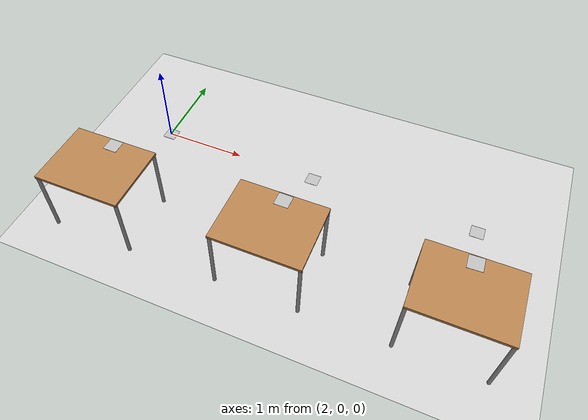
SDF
<sdf version="1.6">
 <world name="default">
  <light name="sun" type="directional">
   <pose>0 0 10 0 -0 0</pose>
   <diffuse>0.8 0.8 0.8 1</diffuse>
   <specular>0.2 0.2 0.2 1</specular>
   <attenuation>
    <range>1000</range>
    <constant>0.9</constant>
    <linear>0.01</linear>
    <quadratic>0.001</quadratic>
   </attenuation>
   <direction>-0.5 0.1 -0.9</direction>
  </light>
  <model name="ground_plane">
   <static>1</static>
   <link name="link">
    <collision name="collision">
     <geometry><plane><normal>0 0 1</normal><size>100 100</size></plane></geometry>
     <surface>
      <contact><collide_bitmask>65535</collide_bitmask></contact>
      <friction><ode><mu>100</mu><mu2>50</mu2></ode></friction>
     </surface>
    </collision>
    <visual name="visual">
     <cast_shadows>0</cast_shadows>
     <geometry><plane><normal>0 0 1</normal><size>100 100</size></plane></geometry>
     <material>
      <script><uri>file://media/materials/scripts/gazebo.material</uri><name>Gazebo/Grey</name></script>
     </material>
    </visual>
   </link>
  </model>
  <gravity>0 0 -9.8</gravity>
  <magnetic_field>6e-06 2.3e-05 -4.2e-05</magnetic_field>
  <atmosphere type="adiabatic"/>
  <physics name="default_physics" default="0" type="ode">
   <max_step_size>0.001</max_step_size>
   <real_time_factor>1</real_time_factor>
   <real_time_update_rate>1000</real_time_update_rate>
  </physics>
  <scene><ambient>0.4 0.4 0.4 1</ambient><background>0.7 0.7 0.7 1</background><shadows>1</shadows></scene>
  <spherical_coordinates>
   <surface_model>EARTH_WGS84</surface_model>
   <latitude_deg>0</latitude_deg>
   <longitude_deg>0</longitude_deg>
   <elevation>0</elevation>
   <heading_deg>0</heading_deg>
  </spherical_coordinates>
  <model name="aruco_marker_original_582">
   <static>0</static>
   <link name="marker">
    <inertial>
     <mass>0.1</mass>
     <inertia><ixx>0</ixx><ixy>0</ixy><ixz>0</ixz><iyy>0</iyy><iyz>0</iyz><izz>0</izz></inertia>
    </inertial>
    <visual name="visual">
     <pose>0 0 0 0 -0 1.57</pose>
     <geometry><box><size>0.16 0.16 0.001</size></box></geometry>
     <material>
      <script>
       <uri>model://aruco_marker_original_582/material/scripts</uri>
       <uri>model://aruco_marker_original_582/material/textures</uri>
       <name>Aruco/aruco_marker_original_582</name>
      </script>
     </material>
    </visual>
    <collision name="collision"><geometry><box><size>0.16 0.16 0.001</size></box></geometry></collision>
    <self_collide>1</self_collide>
   </link>
   <pose>2.00752 0.003675 0.0005 2e-06 -0 -0.016304</pose>
  </model>
  <model name="table">
   <static>1</static>
   <link name="link">
    <collision name="surface">
     <pose>0 0 0.8 0 -0 0</pose>
     <geometry><box><size>1 0.8 0.03</size></box></geometry>
    </collision>
    <visual name="visual1">
     <pose>0 0 0.8 0 -0 0</pose>
     <geometry><box><size>1 0.8 0.03</size></box></geometry>
     <material>
      <script><uri>file://media/materials/scripts/gazebo.material</uri><name>Gazebo/Wood</name></script>
     </material>
    </visual>
    <collision name="front_left_leg">
     <pose>0.48 0.38 0.4 0 -0 0</pose>
     <geometry><cylinder><radius>0.02</radius><length>0.8</length></cylinder></geometry>
    </collision>
    <visual name="front_left_leg">
     <pose>0.48 0.38 0.4 0 -0 0</pose>
     <geometry><cylinder><radius>0.02</radius><length>0.8</length></cylinder></geometry>
     <material>
      <script><uri>file://media/materials/scripts/gazebo.material</uri><name>Gazebo/Grey</name></script>
     </material>
    </visual>
    <collision name="front_right_leg">
     <pose>0.48 -0.38 0.4 0 -0 0</pose>
     <geometry><cylinder><radius>0.02</radius><length>0.8</length></cylinder></geometry>
    </collision>
    <visual name="front_right_leg">
     <pose>0.48 -0.38 0.4 0 -0 0</pose>
     <geometry><cylinder><radius>0.02</radius><length>0.8</length></cylinder></geometry>
     <material>
      <script><uri>file://media/materials/scripts/gazebo.material</uri><name>Gazebo/Grey</name></script>
     </material>
    </visual>
    <collision name="back_right_leg">
     <pose>-0.48 -0.38 0.4 0 -0 0</pose>
     <geometry><cylinder><radius>0.02</radius><length>0.8</length></cylinder></geometry>
    </collision>
    <visual name="back_right_leg">
     <pose>-0.48 -0.38 0.4 0 -0 0</pose>
     <geometry><cylinder><radius>0.02</radius><length>0.8</length></cylinder></geometry>
     <material>
      <script><uri>file://media/materials/scripts/gazebo.material</uri><name>Gazebo/Grey</name></script>
     </material>
    </visual>
    <collision name="back_left_leg">
     <pose>-0.48 0.38 0.4 0 -0 0</pose>
     <geometry><cylinder><radius>0.02</radius><length>0.8</length></cylinder></geometry>
    </collision>
    <visual name="back_left_leg">
     <pose>-0.48 0.38 0.4 0 -0 0</pose>
     <geometry><cylinder><radius>0.02</radius><length>0.8</length></cylinder></geometry>
     <material>
      <script><uri>file://media/materials/scripts/gazebo.material</uri><name>Gazebo/Grey</name></script>
     </material>
    </visual>
    <velocity_decay><linear>0</linear><angular>0</angular></velocity_decay>
   </link>
   <pose>2.00371 -1.41381 0 0 -0 0</pose>
  </model>
  <model name="table_0">
   <static>1</static>
   <link name="link">
    <collision name="surface">
     <pose>0 0 0.8 0 -0 0</pose>
     <geometry><box><size>1 0.8 0.03</size></box></geometry>
    </collision>
    <visual name="visual1">
     <pose>0 0 0.8 0 -0 0</pose>
     <geometry><box><size>1 0.8 0.03</size></box></geometry>
     <material>
      <script><uri>file://media/materials/scripts/gazebo.material</uri><name>Gazebo/Wood</name></script>
     </material>
    </visual>
    <collision name="front_left_leg">
     <pose>0.48 0.38 0.4 0 -0 0</pose>
     <geometry><cylinder><radius>0.02</radius><length>0.8</length></cylinder></geometry>
    </collision>
    <visual name="front_left_leg">
     <pose>0.48 0.38 0.4 0 -0 0</pose>
     <geometry><cylinder><radius>0.02</radius><length>0.8</length></cylinder></geometry>
     <material>
      <script><uri>file://media/materials/scripts/gazebo.material</uri><name>Gazebo/Grey</name></script>
     </material>
    </visual>
    <collision name="front_right_leg">
     <pose>0.48 -0.38 0.4 0 -0 0</pose>
     <geometry><cylinder><radius>0.02</radius><length>0.8</length></cylinder></geometry>
    </collision>
    <visual name="front_right_leg">
     <pose>0.48 -0.38 0.4 0 -0 0</pose>
     <geometry><cylinder><radius>0.02</radius><length>0.8</length></cylinder></geometry>
     <material>
      <script><uri>file://media/materials/scripts/gazebo.material</uri><name>Gazebo/Grey</name></script>
     </material>
    </visual>
    <collision name="back_right_leg">
     <pose>-0.48 -0.38 0.4 0 -0 0</pose>
     <geometry><cylinder><radius>0.02</radius><length>0.8</length></cylinder></geometry>
    </collision>
    <visual name="back_right_leg">
     <pose>-0.48 -0.38 0.4 0 -0 0</pose>
     <geometry><cylinder><radius>0.02</radius><length>0.8</length></cylinder></geometry>
     <material>
      <script><uri>file://media/materials/scripts/gazebo.material</uri><name>Gazebo/Grey</name></script>
     </material>
    </visual>
    <collision name="back_left_leg">
     <pose>-0.48 0.38 0.4 0 -0 0</pose>
     <geometry><cylinder><radius>0.02</radius><length>0.8</length></cylinder></geometry>
    </collision>
    <visual name="back_left_leg">
     <pose>-0.48 0.38 0.4 0 -0 0</pose>
     <geometry><cylinder><radius>0.02</radius><length>0.8</length></cylinder></geometry>
     <material>
      <script><uri>file://media/materials/scripts/gazebo.material</uri><name>Gazebo/Grey</name></script>
     </material>
    </visual>
    <velocity_decay><linear>0</linear><angular>0</angular></velocity_decay>
   </link>
   <pose>4.01267 -1.38642 0 0 -0 0</pose>
  </model>
  <model name="table_1">
   <static>1</static>
   <link name="link">
    <collision name="surface">
     <pose>0 0 0.8 0 -0 0</pose>
     <geometry><box><size>1 0.8 0.03</size></box></geometry>
    </collision>
    <visual name="visual1">
     <pose>0 0 0.8 0 -0 0</pose>
     <geometry><box><size>1 0.8 0.03</size></box></geometry>
     <material>
      <script><uri>file://media/materials/scripts/gazebo.material</uri><name>Gazebo/Wood</name></script>
     </material>
    </visual>
    <collision name="front_left_leg">
     <pose>0.48 0.38 0.4 0 -0 0</pose>
     <geometry><cylinder><radius>0.02</radius><length>0.8</length></cylinder></geometry>
    </collision>
    <visual name="front_left_leg">
     <pose>0.48 0.38 0.4 0 -0 0</pose>
     <geometry><cylinder><radius>0.02</radius><length>0.8</length></cylinder></geometry>
     <material>
      <script><uri>file://media/materials/scripts/gazebo.material</uri><name>Gazebo/Grey</name></script>
     </material>
    </visual>
    <collision name="front_right_leg">
     <pose>0.48 -0.38 0.4 0 -0 0</pose>
     <geometry><cylinder><radius>0.02</radius><length>0.8</length></cylinder></geometry>
    </collision>
    <visual name="front_right_leg">
     <pose>0.48 -0.38 0.4 0 -0 0</pose>
     <geometry><cylinder><radius>0.02</radius><length>0.8</length></cylinder></geometry>
     <material>
      <script><uri>file://media/materials/scripts/gazebo.material</uri><name>Gazebo/Grey</name></script>
     </material>
    </visual>
    <collision name="back_right_leg">
     <pose>-0.48 -0.38 0.4 0 -0 0</pose>
     <geometry><cylinder><radius>0.02</radius><length>0.8</length></cylinder></geometry>
    </collision>
    <visual name="back_right_leg">
     <pose>-0.48 -0.38 0.4 0 -0 0</pose>
     <geometry><cylinder><radius>0.02</radius><length>0.8</length></cylinder></geometry>
     <material>
      <script><uri>file://media/materials/scripts/gazebo.material</uri><name>Gazebo/Grey</name></script>
     </material>
    </visual>
    <collision name="back_left_leg">
     <pose>-0.48 0.38 0.4 0 -0 0</pose>
     <geometry><cylinder><radius>0.02</radius><length>0.8</length></cylinder></geometry>
    </collision>
    <visual name="back_left_leg">
     <pose>-0.48 0.38 0.4 0 -0 0</pose>
     <geometry><cylinder><radius>0.02</radius><length>0.8</length></cylinder></geometry>
     <material>
      <script><uri>file://media/materials/scripts/gazebo.material</uri><name>Gazebo/Grey</name></script>
     </material>
    </visual>
    <velocity_decay><linear>0</linear><angular>0</angular></velocity_decay>
   </link>
   <pose>5.96985 -1.37487 0 0 -0 0</pose>
  </model>
  <model name="aruco_marker_original_582_clone">
   <static>0</static>
   <link name="marker">
    <inertial>
     <mass>0.1</mass>
     <inertia><ixx>0</ixx><ixy>0</ixy><ixz>0</ixz><iyy>0</iyy><iyz>0</iyz><izz>0</izz></inertia>
    </inertial>
    <visual name="visual">
     <pose>0 0 0 0 -0 1.57</pose>
     <geometry><box><size>0.16 0.16 0.001</size></box></geometry>
     <material>
      <script>
       <uri>model://aruco_marker_original_582/material/scripts</uri>
       <uri>model://aruco_marker_original_582/material/textures</uri>
       <name>Aruco/aruco_marker_original_582</name>
      </script>
     </material>
    </visual>
    <collision name="collision"><geometry><box><size>0.16 0.16 0.001</size></box></geometry></collision>
    <self_collide>1</self_collide>
   </link>
   <pose>2.01637 -1.09892 0.815501 -1e-06 1e-05 -1.57997</pose>
  </model>
  <model name="aruco_marker_original_26">
   <static>0</static>
   <link name="marker">
    <inertial>
     <mass>0.1</mass>
     <inertia><ixx>0</ixx><ixy>0</ixy><ixz>0</ixz><iyy>0</iyy><iyz>0</iyz><izz>0</izz></inertia>
    </inertial>
    <visual name="visual">
     <pose>0 0 0 0 -0 1.57</pose>
     <geometry><box><size>0.16 0.16 0.001</size></box></geometry>
     <material>
      <script>
       <uri>model://aruco_marker_original_26/material/scripts</uri>
       <uri>model://aruco_marker_original_26/material/textures</uri>
       <name>Aruco/aruco_marker_original_26</name>
      </script>
     </material>
    </visual>
    <collision name="collision"><geometry><box><size>0.16 0.16 0.001</size></box></geometry></collision>
    <self_collide>1</self_collide>
   </link>
   <pose>4.00039 -0.007195 0.0005 2e-06 1e-06 0</pose>
  </model>
  <model name="aruco_marker_original_26_clone">
   <static>0</static>
   <link name="marker">
    <inertial>
     <mass>0.1</mass>
     <inertia><ixx>0</ixx><ixy>0</ixy><ixz>0</ixz><iyy>0</iyy><iyz>0</iyz><izz>0</izz></inertia>
    </inertial>
    <visual name="visual">
     <pose>0 0 0 0 -0 1.57</pose>
     <geometry><box><size>0.16 0.16 0.001</size></box></geometry>
     <material>
      <script>
       <uri>model://aruco_marker_original_26/material/scripts</uri>
       <uri>model://aruco_marker_original_26/material/textures</uri>
       <name>Aruco/aruco_marker_original_26</name>
      </script>
     </material>
    </visual>
    <collision name="collision"><geometry><box><size>0.16 0.16 0.001</size></box></geometry></collision>
    <self_collide>1</self_collide>
   </link>
   <pose>4.03371 -1.07563 0.8155 -2e-06 2e-06 -1.57885</pose>
  </model>
  <model name="aruco_marker_original_63">
   <static>0</static>
   <link name="marker">
    <inertial>
     <mass>0.1</mass>
     <inertia><ixx>0</ixx><ixy>0</ixy><ixz>0</ixz><iyy>0</iyy><iyz>0</iyz><izz>0</izz></inertia>
    </inertial>
    <visual name="visual">
     <pose>0 0 0 0 -0 1.57</pose>
     <geometry><box><size>0.16 0.16 0.001</size></box></geometry>
     <material>
      <script>
       <uri>model://aruco_marker_original_63/material/scripts</uri>
       <uri>model://aruco_marker_original_63/material/textures</uri>
       <name>Aruco/aruco_marker_original_63</name>
      </script>
     </material>
    </visual>
    <collision name="collision"><geometry><box><size>0.16 0.16 0.001</size></box></geometry></collision>
    <self_collide>1</self_collide>
   </link>
   <pose>6.01667 -0.017236 0.000501 -6e-06 4e-06 0</pose>
  </model>
  <model name="aruco_marker_original_63_clone">
   <static>0</static>
   <link name="marker">
    <inertial>
     <mass>0.1</mass>
     <inertia><ixx>0</ixx><ixy>0</ixy><ixz>0</ixz><iyy>0</iyy><iyz>0</iyz><izz>0</izz></inertia>
    </inertial>
    <visual name="visual">
     <pose>0 0 0 0 -0 1.57</pose>
     <geometry><box><size>0.16 0.16 0.001</size></box></geometry>
     <material>
      <script>
       <uri>model://aruco_marker_original_63/material/scripts</uri>
       <uri>model://aruco_marker_original_63/material/textures</uri>
       <name>Aruco/aruco_marker_original_63</name>
      </script>
     </material>
    </visual>
    <collision name="collision"><geometry><box><size>0.16 0.16 0.001</size></box></geometry></collision>
    <self_collide>1</self_collide>
   </link>
   <pose>5.97546 -1.06234 0.8155 -2e-06 -0 -1.52976</pose>
  </model>
 </world>
</sdf>
